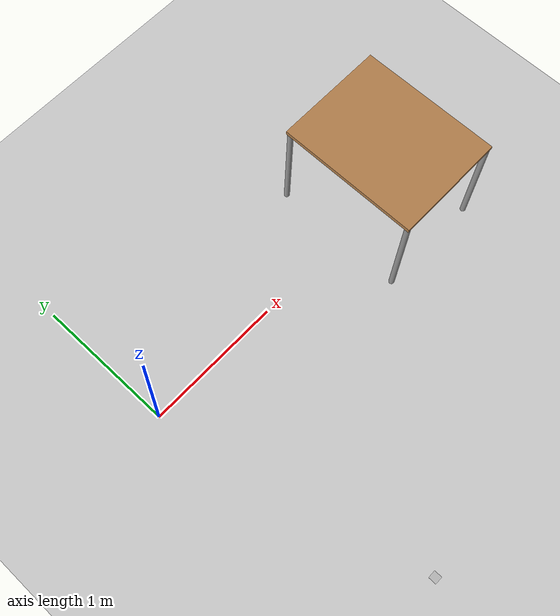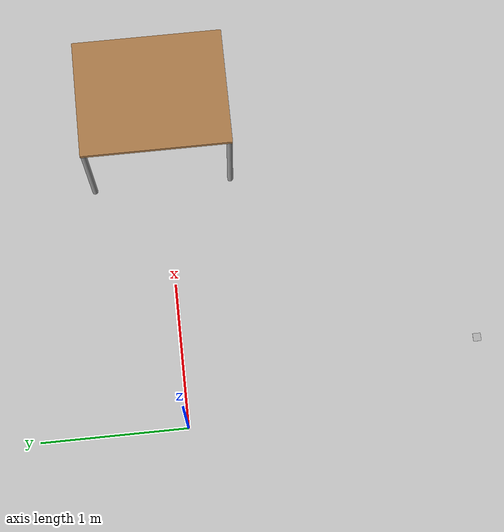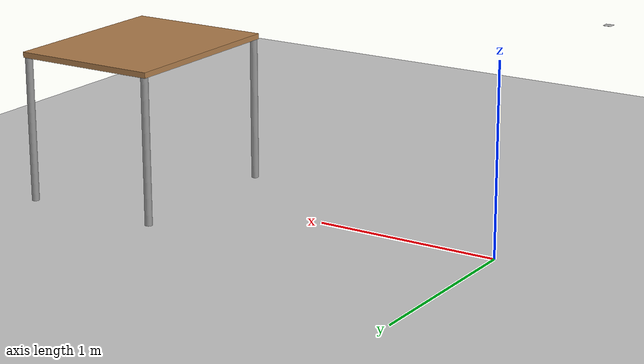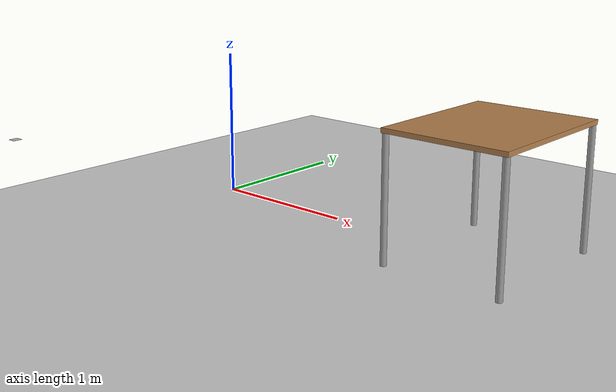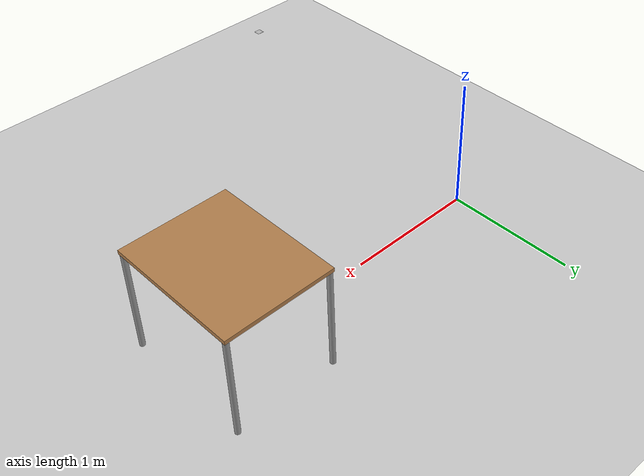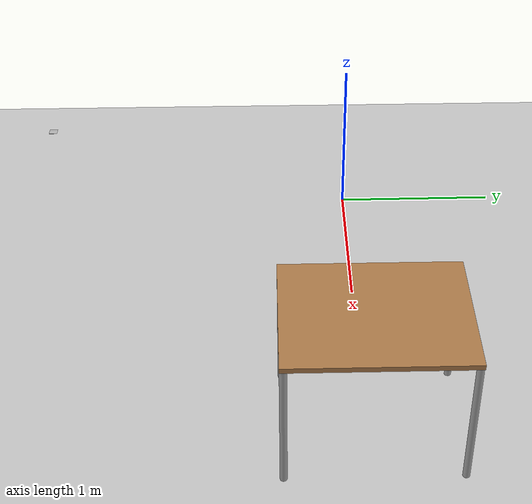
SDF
<sdf version="1.6">
 <world name="default">
  <plugin name="ros_link_attacher_plugin" filename="libgazebo_ros_link_attacher.so"/>
  <light name="sun" type="directional">
   <pose>0 0 10 0 -0 0</pose>
   <diffuse>0.8 0.8 0.8 1</diffuse>
   <specular>0.2 0.2 0.2 1</specular>
   <attenuation>
    <range>1000</range>
    <constant>0.9</constant>
    <linear>0.01</linear>
    <quadratic>0.001</quadratic>
   </attenuation>
   <direction>-0.5 0.1 -0.9</direction>
  </light>
  <model name="ground_plane">
   <static>1</static>
   <link name="link">
    <collision name="collision">
     <geometry><plane><normal>0 0 1</normal><size>100 100</size></plane></geometry>
     <surface>
      <contact><collide_bitmask>65535</collide_bitmask></contact>
      <friction><ode><mu>100</mu><mu2>50</mu2></ode></friction>
     </surface>
    </collision>
    <visual name="visual">
     <cast_shadows>0</cast_shadows>
     <geometry><plane><normal>0 0 1</normal><size>100 100</size></plane></geometry>
     <material>
      <script><uri>file://media/materials/scripts/gazebo.material</uri><name>Gazebo/Grey</name></script>
     </material>
    </visual>
   </link>
  </model>
  <gravity>0 0 -9.8</gravity>
  <magnetic_field>6e-06 2.3e-05 -4.2e-05</magnetic_field>
  <atmosphere type="adiabatic"/>
  <physics name="default_physics" default="0" type="ode">
   <max_step_size>0.001</max_step_size>
   <real_time_factor>1</real_time_factor>
   <real_time_update_rate>1000</real_time_update_rate>
  </physics>
  <scene><ambient>0.4 0.4 0.4 1</ambient><background>0.7 0.7 0.7 1</background><shadows>1</shadows></scene>
  <audio><device>default</device></audio>
  <spherical_coordinates>
   <surface_model>EARTH_WGS84</surface_model>
   <latitude_deg>0</latitude_deg>
   <longitude_deg>0</longitude_deg>
   <elevation>0</elevation>
   <heading_deg>0</heading_deg>
  </spherical_coordinates>
  <model name="table_0">
   <static>1</static>
   <link name="link">
    <collision name="surface">
     <pose>0 0 0.8 0 -0 0</pose>
     <geometry><box><size>1 0.8 0.03</size></box></geometry>
    </collision>
    <visual name="visual1">
     <pose>0 0 0.8 0 -0 0</pose>
     <geometry><box><size>1 0.8 0.03</size></box></geometry>
     <material>
      <script><uri>file://media/materials/scripts/gazebo.material</uri><name>Gazebo/Wood</name></script>
     </material>
    </visual>
    <collision name="front_left_leg">
     <pose>0.48 0.38 0.4 0 -0 0</pose>
     <geometry><cylinder><radius>0.02</radius><length>0.8</length></cylinder></geometry>
    </collision>
    <visual name="front_left_leg">
     <pose>0.48 0.38 0.4 0 -0 0</pose>
     <geometry><cylinder><radius>0.02</radius><length>0.8</length></cylinder></geometry>
     <material>
      <script><uri>file://media/materials/scripts/gazebo.material</uri><name>Gazebo/Grey</name></script>
     </material>
    </visual>
    <collision name="front_right_leg">
     <pose>0.48 -0.38 0.4 0 -0 0</pose>
     <geometry><cylinder><radius>0.02</radius><length>0.8</length></cylinder></geometry>
    </collision>
    <visual name="front_right_leg">
     <pose>0.48 -0.38 0.4 0 -0 0</pose>
     <geometry><cylinder><radius>0.02</radius><length>0.8</length></cylinder></geometry>
     <material>
      <script><uri>file://media/materials/scripts/gazebo.material</uri><name>Gazebo/Grey</name></script>
     </material>
    </visual>
    <collision name="back_right_leg">
     <pose>-0.48 -0.38 0.4 0 -0 0</pose>
     <geometry><cylinder><radius>0.02</radius><length>0.8</length></cylinder></geometry>
    </collision>
    <visual name="back_right_leg">
     <pose>-0.48 -0.38 0.4 0 -0 0</pose>
     <geometry><cylinder><radius>0.02</radius><length>0.8</length></cylinder></geometry>
     <material>
      <script><uri>file://media/materials/scripts/gazebo.material</uri><name>Gazebo/Grey</name></script>
     </material>
    </visual>
    <collision name="back_left_leg">
     <pose>-0.48 0.38 0.4 0 -0 0</pose>
     <geometry><cylinder><radius>0.02</radius><length>0.8</length></cylinder></geometry>
    </collision>
    <visual name="back_left_leg">
     <pose>-0.48 0.38 0.4 0 -0 0</pose>
     <geometry><cylinder><radius>0.02</radius><length>0.8</length></cylinder></geometry>
     <material>
      <script><uri>file://media/materials/scripts/gazebo.material</uri><name>Gazebo/Grey</name></script>
     </material>
    </visual>
    <velocity_decay><linear>0</linear><angular>0</angular></velocity_decay>
   </link>
   <pose>2.11403 0.023827 0 0 -0 1.57</pose>
  </model>
  <model name="aruco_marker_original_111">
   <static>1</static>
   <link name="marker">
    <inertial>
     <mass>0.1</mass>
     <inertia><ixx>0</ixx><ixy>0</ixy><ixz>0</ixz><iyy>0</iyy><iyz>0</iyz><izz>0</izz></inertia>
    </inertial>
    <visual name="visual">
     <pose>0 0 0 0 -0 1.57</pose>
     <geometry><box><size>0.05 0.05 0.001</size></box></geometry>
     <material>
      <script>
       <uri>model://aruco_marker_original_111/material/scripts</uri>
       <uri>model://aruco_marker_original_111/material/textures</uri>
       <name>Aruco/aruco_marker_original_111</name>
      </script>
     </material>
    </visual>
    <collision name="collision"><geometry><box><size>0.05 0.05 0.001</size></box></geometry></collision>
    <self_collide>1</self_collide>
   </link>
   <pose>0.28 -1.87 0.765 0 0 3.14</pose>
  </model>
 </world>
</sdf>
